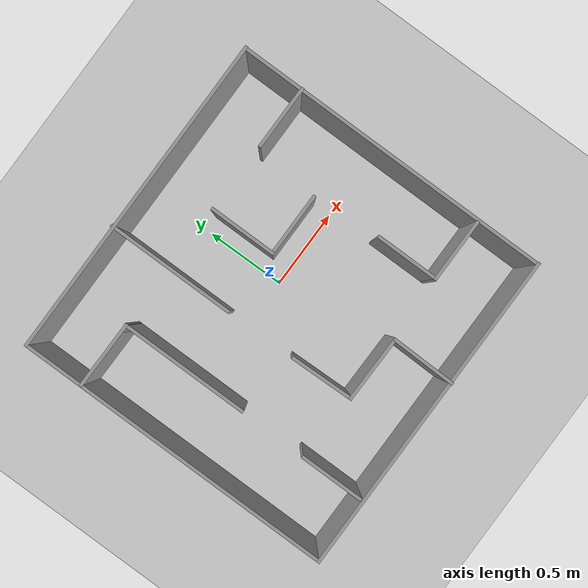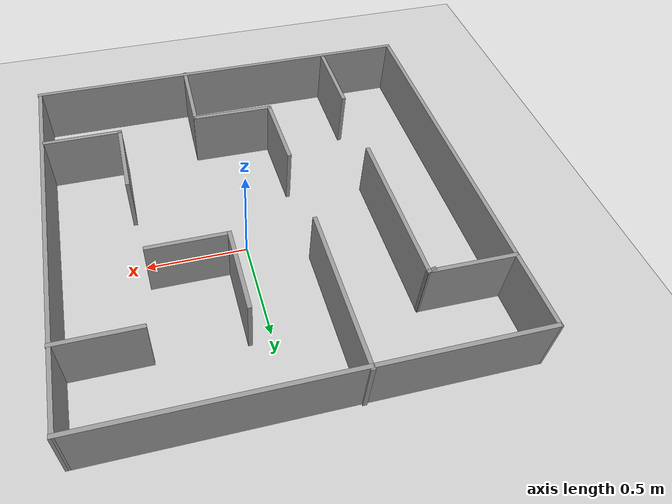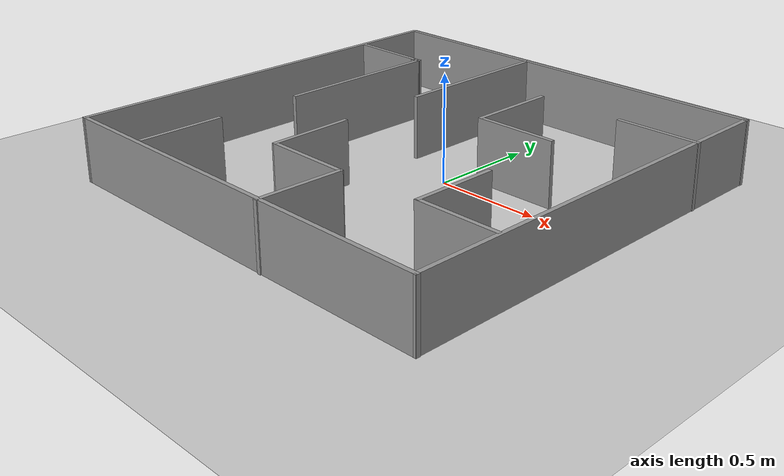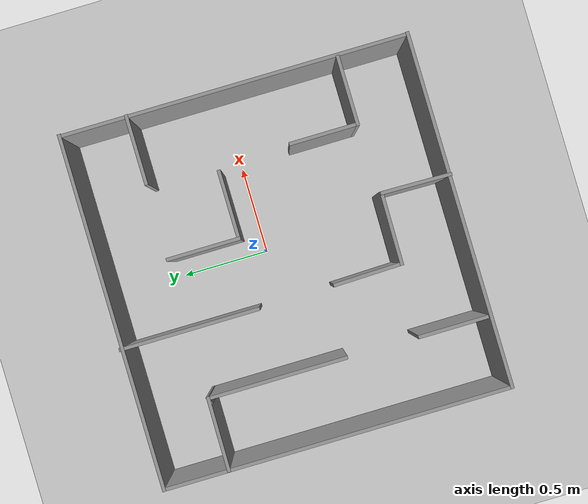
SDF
<sdf version="1.6">
 <world name="default">
  <light name="sun" type="directional">
   <pose>0 0 10 0 -0 0</pose>
   <diffuse>0.8 0.8 0.8 1</diffuse>
   <specular>0.2 0.2 0.2 1</specular>
   <attenuation>
    <range>1000</range>
    <constant>0.9</constant>
    <linear>0.01</linear>
    <quadratic>0.001</quadratic>
   </attenuation>
   <direction>-0.5 0.1 -0.9</direction>
   <spot><inner_angle>0</inner_angle><outer_angle>0</outer_angle><falloff>0</falloff></spot>
  </light>
  <model name="ground_plane">
   <static>1</static>
   <link name="link">
    <collision name="collision">
     <geometry><plane><normal>0 0 1</normal><size>100 100</size></plane></geometry>
     <surface>
      <contact><collide_bitmask>65535</collide_bitmask></contact>
      <friction><ode><mu>100</mu><mu2>50</mu2></ode></friction>
     </surface>
    </collision>
    <visual name="visual">
     <cast_shadows>0</cast_shadows>
     <geometry><plane><normal>0 0 1</normal><size>100 100</size></plane></geometry>
     <material>
      <script><uri>file://media/materials/scripts/gazebo.material</uri><name>Gazebo/Grey</name></script>
     </material>
    </visual>
   </link>
  </model>
  <gravity>0 0 -9.8</gravity>
  <magnetic_field>6e-06 2.3e-05 -4.2e-05</magnetic_field>
  <atmosphere type="adiabatic"/>
  <physics name="default_physics" default="0" type="ode">
   <max_step_size>0.001</max_step_size>
   <real_time_factor>1</real_time_factor>
   <real_time_update_rate>1000</real_time_update_rate>
  </physics>
  <scene><ambient>0.4 0.4 0.4 1</ambient><background>0.7 0.7 0.7 1</background><shadows>1</shadows></scene>
  <audio><device>default</device></audio>
  <spherical_coordinates>
   <surface_model>EARTH_WGS84</surface_model>
   <latitude_deg>0</latitude_deg>
   <longitude_deg>0</longitude_deg>
   <elevation>0</elevation>
   <heading_deg>0</heading_deg>
  </spherical_coordinates>
  <model name="maze.world">
   <pose>-0.089874 -0.087383 0 0 -0 0</pose>
   <link name="Wall_0">
    <collision name="Wall_0_Collision">
     <geometry><box><size>2.03126 0.02 0.3</size></box></geometry>
     <pose>0 0 0.15 0 -0 0</pose>
    </collision>
    <visual name="Wall_0_Visual">
     <pose>0 0 0.15 0 -0 0</pose>
     <geometry><box><size>2.03126 0.02 0.3</size></box></geometry>
     <material>
      <script><uri>file://media/materials/scripts/gazebo.material</uri><name>Gazebo/Grey</name></script>
      <ambient>1 1 1 1</ambient>
     </material>
     <meta><layer>0</layer></meta>
    </visual>
    <pose>0.000502 0.988382 0 0 -0 0</pose>
   </link>
   <link name="Wall_11">
    <collision name="Wall_11_Collision">
     <geometry><box><size>0.4 0.02 0.3</size></box></geometry>
     <pose>0 0 0.15 0 -0 0</pose>
    </collision>
    <visual name="Wall_11_Visual">
     <pose>0 0 0.15 0 -0 0</pose>
     <geometry><box><size>0.4 0.02 0.3</size></box></geometry>
     <material>
      <script><uri>file://media/materials/scripts/gazebo.material</uri><name>Gazebo/Grey</name></script>
      <ambient>1 1 1 1</ambient>
     </material>
     <meta><layer>0</layer></meta>
    </visual>
    <pose>-0.601185 -0.778358 0 0 -0 -1.5708</pose>
   </link>
   <link name="Wall_13">
    <collision name="Wall_13_Collision">
     <geometry><box><size>0.403575 0.02 0.3</size></box></geometry>
     <pose>0 0 0.15 0 -0 0</pose>
    </collision>
    <visual name="Wall_13_Visual">
     <pose>0 0 0.15 0 -0 0</pose>
     <geometry><box><size>0.403575 0.02 0.3</size></box></geometry>
     <material>
      <script><uri>file://media/materials/scripts/gazebo.material</uri><name>Gazebo/Grey</name></script>
      <ambient>1 1 1 1</ambient>
     </material>
     <meta><layer>0</layer></meta>
    </visual>
    <pose>0.205878 -0.804614 0 0 -0 1.55247</pose>
   </link>
   <link name="Wall_14">
    <collision name="Wall_14_Collision">
     <geometry><box><size>0.419365 0.02 0.3</size></box></geometry>
     <pose>0 0 0.15 0 -0 0</pose>
    </collision>
    <visual name="Wall_14_Visual">
     <pose>0 0 0.15 0 -0 0</pose>
     <geometry><box><size>0.419365 0.02 0.3</size></box></geometry>
     <material>
      <script><uri>file://media/materials/scripts/gazebo.material</uri><name>Gazebo/Grey</name></script>
      <ambient>1 1 1 1</ambient>
     </material>
     <meta><layer>0</layer></meta>
    </visual>
    <pose>0.009633 -0.606858 0 0 -0 3.13038</pose>
   </link>
   <link name="Wall_15">
    <collision name="Wall_15_Collision">
     <geometry><box><size>0.4 0.02 0.3</size></box></geometry>
     <pose>0 0 0.15 0 -0 0</pose>
    </collision>
    <visual name="Wall_15_Visual">
     <pose>0 0 0.15 0 -0 0</pose>
     <geometry><box><size>0.4 0.02 0.3</size></box></geometry>
     <material>
      <script><uri>file://media/materials/scripts/gazebo.material</uri><name>Gazebo/Grey</name></script>
      <ambient>1 1 1 1</ambient>
     </material>
     <meta><layer>0</layer></meta>
    </visual>
    <pose>-0.194626 -0.414617 0 0 -0 1.59448</pose>
   </link>
   <link name="Wall_17">
    <collision name="Wall_17_Collision">
     <geometry><box><size>0.4 0.02 0.3</size></box></geometry>
     <pose>0 0 0.15 0 -0 0</pose>
    </collision>
    <visual name="Wall_17_Visual">
     <pose>0 0 0.15 0 -0 0</pose>
     <geometry><box><size>0.4 0.02 0.3</size></box></geometry>
     <material>
      <script><uri>file://media/materials/scripts/gazebo.material</uri><name>Gazebo/Grey</name></script>
      <ambient>1 1 1 1</ambient>
     </material>
     <meta><layer>0</layer></meta>
    </visual>
    <pose>0.798376 -0.590357 0 0 -0 0</pose>
   </link>
   <link name="Wall_19">
    <collision name="Wall_19_Collision">
     <geometry><box><size>0.426961 0.02 0.3</size></box></geometry>
     <pose>0 0 0.15 0 -0 0</pose>
    </collision>
    <visual name="Wall_19_Visual">
     <pose>0 0 0.15 0 -0 0</pose>
     <geometry><box><size>0.426961 0.02 0.3</size></box></geometry>
     <material>
      <script><uri>file://media/materials/scripts/gazebo.material</uri><name>Gazebo/Grey</name></script>
      <ambient>1 1 1 1</ambient>
     </material>
     <meta><layer>0</layer></meta>
    </visual>
    <pose>-0.799876 0.617332 0 0 -0 -0.008415</pose>
   </link>
   <link name="Wall_20">
    <collision name="Wall_20_Collision">
     <geometry><box><size>0.046793 0.02 0.3</size></box></geometry>
     <pose>0 0 0.15 0 -0 0</pose>
    </collision>
    <visual name="Wall_20_Visual">
     <pose>0 0 0.15 0 -0 0</pose>
     <geometry><box><size>0.046793 0.02 0.3</size></box></geometry>
     <material>
      <script><uri>file://media/materials/scripts/gazebo.material</uri><name>Gazebo/Grey</name></script>
      <ambient>1 1 1 1</ambient>
     </material>
     <meta><layer>0</layer></meta>
    </visual>
    <pose>-0.609968 0.612503 0 0 -0 -2.90875</pose>
   </link>
   <link name="Wall_22">
    <collision name="Wall_22_Collision">
     <geometry><box><size>0.8 0.02 0.3</size></box></geometry>
     <pose>0 0 0.15 0 -0 0</pose>
    </collision>
    <visual name="Wall_22_Visual">
     <pose>0 0 0.15 0 -0 0</pose>
     <geometry><box><size>0.8 0.02 0.3</size></box></geometry>
     <material>
      <script><uri>file://media/materials/scripts/gazebo.material</uri><name>Gazebo/Grey</name></script>
      <ambient>1 1 1 1</ambient>
     </material>
     <meta><layer>0</layer></meta>
    </visual>
    <pose>-0.59681 0.221864 0 0 -0 -1.5708</pose>
   </link>
   <link name="Wall_24">
    <collision name="Wall_24_Collision">
     <geometry><box><size>0.8 0.02 0.3</size></box></geometry>
     <pose>0 0 0.15 0 -0 0</pose>
    </collision>
    <visual name="Wall_24_Visual">
     <pose>0 0 0.15 0 -0 0</pose>
     <geometry><box><size>0.8 0.02 0.3</size></box></geometry>
     <material>
      <script><uri>file://media/materials/scripts/gazebo.material</uri><name>Gazebo/Grey</name></script>
      <ambient>1 1 1 1</ambient>
     </material>
     <meta><layer>0</layer></meta>
    </visual>
    <pose>-0.205579 0.606551 0 0 -0 -1.5708</pose>
   </link>
   <link name="Wall_26">
    <collision name="Wall_26_Collision">
     <geometry><box><size>0.422754 0.02 0.3</size></box></geometry>
     <pose>0 0 0.15 0 -0 0</pose>
    </collision>
    <visual name="Wall_26_Visual">
     <pose>0 0 0.15 0 -0 0</pose>
     <geometry><box><size>0.422754 0.02 0.3</size></box></geometry>
     <material>
      <script><uri>file://media/materials/scripts/gazebo.material</uri><name>Gazebo/Grey</name></script>
      <ambient>1 1 1 1</ambient>
     </material>
     <meta><layer>0</layer></meta>
    </visual>
    <pose>0.192874 0.409883 0 0 -0 -1.5708</pose>
   </link>
   <link name="Wall_27">
    <collision name="Wall_27_Collision">
     <geometry><box><size>0.4 0.02 0.3</size></box></geometry>
     <pose>0 0 0.15 0 -0 0</pose>
    </collision>
    <visual name="Wall_27_Visual">
     <pose>0 0 0.15 0 -0 0</pose>
     <geometry><box><size>0.4 0.02 0.3</size></box></geometry>
     <material>
      <script><uri>file://media/materials/scripts/gazebo.material</uri><name>Gazebo/Grey</name></script>
      <ambient>1 1 1 1</ambient>
     </material>
     <meta><layer>0</layer></meta>
    </visual>
    <pose>0.382874 0.208383 0 0 -0 0</pose>
   </link>
   <link name="Wall_29">
    <collision name="Wall_29_Collision">
     <geometry><box><size>0.4 0.02 0.3</size></box></geometry>
     <pose>0 0 0.15 0 -0 0</pose>
    </collision>
    <visual name="Wall_29_Visual">
     <pose>0 0 0.15 0 -0 0</pose>
     <geometry><box><size>0.4 0.02 0.3</size></box></geometry>
     <material>
      <script><uri>file://media/materials/scripts/gazebo.material</uri><name>Gazebo/Grey</name></script>
      <ambient>1 1 1 1</ambient>
     </material>
     <meta><layer>0</layer></meta>
    </visual>
    <pose>0.815497 0.607791 0 0 -0 3.14159</pose>
   </link>
   <link name="Wall_31">
    <collision name="Wall_31_Collision">
     <geometry><box><size>0.4 0.02 0.3</size></box></geometry>
     <pose>0 0 0.15 0 -0 0</pose>
    </collision>
    <visual name="Wall_31_Visual">
     <pose>0 0 0.15 0 -0 0</pose>
     <geometry><box><size>0.4 0.02 0.3</size></box></geometry>
     <material>
      <script><uri>file://media/materials/scripts/gazebo.material</uri><name>Gazebo/Grey</name></script>
      <ambient>1 1 1 1</ambient>
     </material>
     <meta><layer>0</layer></meta>
    </visual>
    <pose>0.608376 -0.400357 0 0 -0 1.5708</pose>
   </link>
   <link name="Wall_4">
    <collision name="Wall_4_Collision">
     <geometry><box><size>2.03027 0.02 0.3</size></box></geometry>
     <pose>0 0 0.15 0 -0 0</pose>
    </collision>
    <visual name="Wall_4_Visual">
     <pose>0 0 0.15 0 -0 0</pose>
     <geometry><box><size>2.03027 0.02 0.3</size></box></geometry>
     <material>
      <script><uri>file://media/materials/scripts/gazebo.material</uri><name>Gazebo/Grey</name></script>
      <ambient>1 1 1 1</ambient>
     </material>
     <meta><layer>0</layer></meta>
    </visual>
    <pose>-0.000991 -0.991617 0 0 -0 0</pose>
   </link>
   <link name="Wall_6">
    <collision name="Wall_6_Collision">
     <geometry><box><size>2 0.02 0.3</size></box></geometry>
     <pose>0 0 0.15 0 -0 0</pose>
    </collision>
    <visual name="Wall_6_Visual">
     <pose>0 0 0.15 0 -0 0</pose>
     <geometry><box><size>2 0.02 0.3</size></box></geometry>
     <material>
      <script><uri>file://media/materials/scripts/gazebo.material</uri><name>Gazebo/Grey</name></script>
      <ambient>1 1 1 1</ambient>
     </material>
     <meta><layer>0</layer></meta>
    </visual>
    <pose>-1.00563 -0.001617 0 0 -0 1.57029</pose>
   </link>
   <link name="Wall_8">
    <collision name="Wall_8_Collision">
     <geometry><box><size>2 0.02 0.3</size></box></geometry>
     <pose>0 0 0.15 0 -0 0</pose>
    </collision>
    <visual name="Wall_8_Visual">
     <pose>0 0 0.15 0 -0 0</pose>
     <geometry><box><size>2 0.02 0.3</size></box></geometry>
     <material>
      <script><uri>file://media/materials/scripts/gazebo.material</uri><name>Gazebo/Grey</name></script>
      <ambient>1 1 1 1</ambient>
     </material>
     <meta><layer>0</layer></meta>
    </visual>
    <pose>1.00229 -0.001618 0 0 -0 1.56979</pose>
   </link>
   <static>1</static>
  </model>
 </world>
</sdf>
